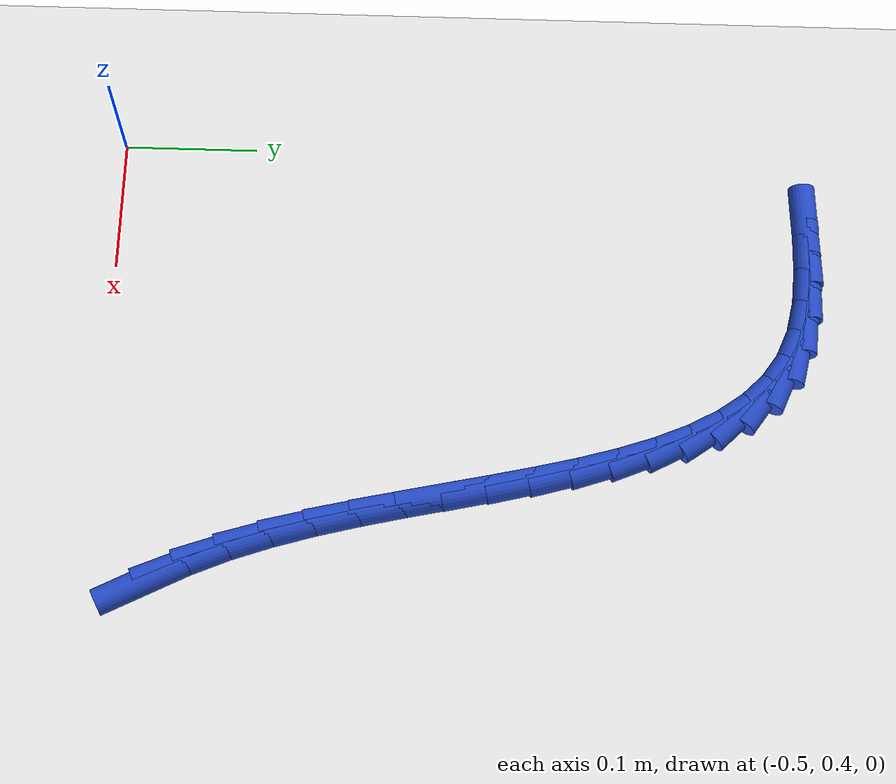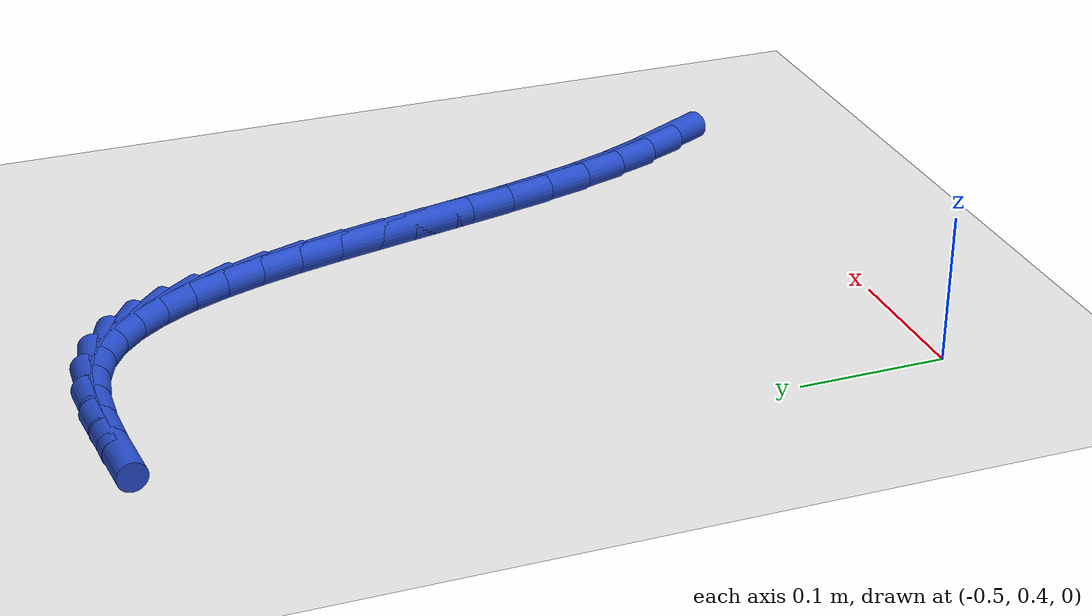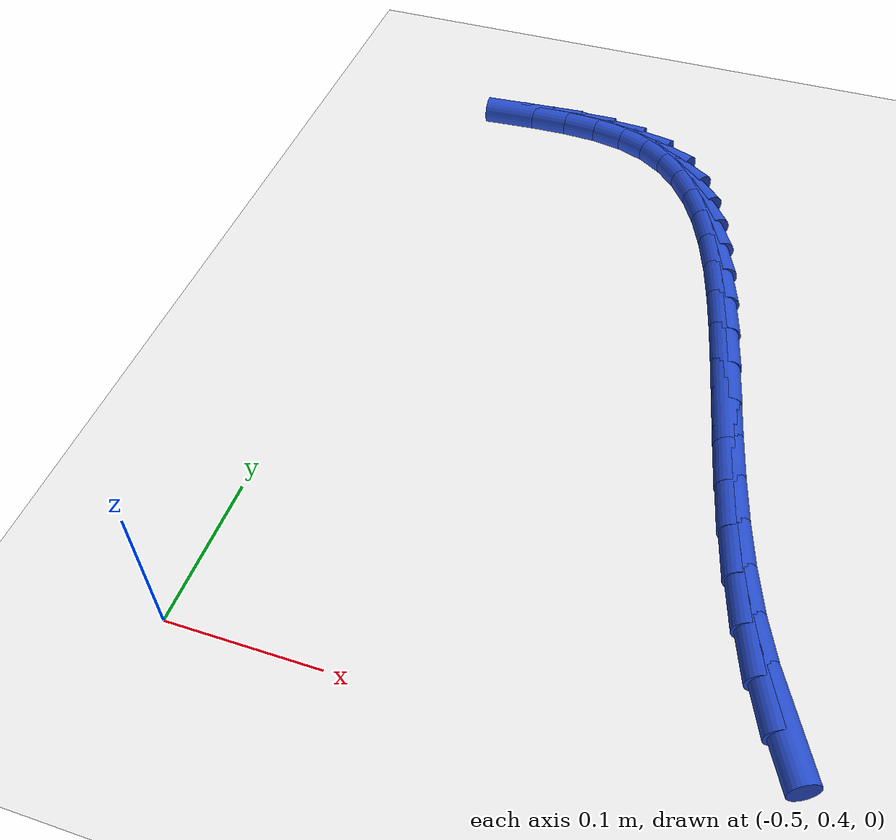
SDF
<sdf version="1.6">
 <world name="default">
  <model name="ground_plane">
   <static>1</static>
   <link name="link">
    <collision name="collision">
     <geometry><plane><normal>0 0 1</normal><size>100 100</size></plane></geometry>
     <surface><friction><ode><mu>100</mu><mu2>50</mu2></ode></friction></surface>
    </collision>
    <visual name="visual">
     <cast_shadows>0</cast_shadows>
     <geometry><plane><normal>0 0 1</normal><size>100 100</size></plane></geometry>
     <material>
      <script><uri>file://media/materials/scripts/gazebo.material</uri><name>Gazebo/WhiteGlow</name></script>
     </material>
    </visual>
   </link>
  </model>
  <model name="line">
   <link name="link_17">
    <pose>-0.15432065021140776 0.44470129612143205 0.01 0 1.57 -1.0973958093674703</pose>
    <collision name="collision">
     <geometry><cylinder><radius>0.01</radius><length>0.08</length></cylinder></geometry>
    </collision>
    <visual name="visual">
     <material>
      <script><name>Gazebo/Blue</name><uri>file://media/materials/scripts/gazebo.material</uri></script>
     </material>
     <geometry><cylinder><radius>0.01</radius><length>0.08</length></cylinder></geometry>
    </visual>
   </link>
   <link name="link_18">
    <pose>-0.16807427686131227 0.471550671698293 0.01 0 1.57 -1.1650815043284315</pose>
    <collision name="collision">
     <geometry><cylinder><radius>0.01</radius><length>0.08</length></cylinder></geometry>
    </collision>
    <visual name="visual">
     <material>
      <script><name>Gazebo/Blue</name><uri>file://media/materials/scripts/gazebo.material</uri></script>
     </material>
     <geometry><cylinder><radius>0.01</radius><length>0.08</length></cylinder></geometry>
    </visual>
   </link>
   <link name="link_19">
    <pose>-0.18028986768407876 0.499989049497895 0.01 0 1.57 -1.2301213299915739</pose>
    <collision name="collision">
     <geometry><cylinder><radius>0.01</radius><length>0.08</length></cylinder></geometry>
    </collision>
    <visual name="visual">
     <material>
      <script><name>Gazebo/Blue</name><uri>file://media/materials/scripts/gazebo.material</uri></script>
     </material>
     <geometry><cylinder><radius>0.01</radius><length>0.08</length></cylinder></geometry>
    </visual>
   </link>
   <link name="link_20">
    <pose>-0.19091954757558063 0.5299743366181011 0.01 0 1.57 -1.2802395257758827</pose>
    <collision name="collision">
     <geometry><cylinder><radius>0.01</radius><length>0.08</length></cylinder></geometry>
    </collision>
    <visual name="visual">
     <material>
      <script><name>Gazebo/Blue</name><uri>file://media/materials/scripts/gazebo.material</uri></script>
     </material>
     <geometry><cylinder><radius>0.01</radius><length>0.08</length></cylinder></geometry>
    </visual>
   </link>
   <link name="link_21">
    <pose>-0.20024060509884234 0.5611464328897653 0.01 0 1.57 -1.3167862494645184</pose>
    <collision name="collision">
     <geometry><cylinder><radius>0.01</radius><length>0.08</length></cylinder></geometry>
    </collision>
    <visual name="visual">
     <material>
      <script><name>Gazebo/Blue</name><uri>file://media/materials/scripts/gazebo.material</uri></script>
     </material>
     <geometry><cylinder><radius>0.01</radius><length>0.08</length></cylinder></geometry>
    </visual>
   </link>
   <link name="link_22">
    <pose>-0.20854447460294634 0.5931314036867638 0.01 0 1.57 -1.3411977398994734</pose>
    <collision name="collision">
     <geometry><cylinder><radius>0.01</radius><length>0.08</length></cylinder></geometry>
    </collision>
    <visual name="visual">
     <material>
      <script><name>Gazebo/Blue</name><uri>file://media/materials/scripts/gazebo.material</uri></script>
     </material>
     <geometry><cylinder><radius>0.01</radius><length>0.08</length></cylinder></geometry>
    </visual>
   </link>
   <link name="link_23">
    <pose>-0.21612259043697518 0.6255553143829725 0.01 0 1.57 -1.3543565602587473</pose>
    <collision name="collision">
     <geometry><cylinder><radius>0.01</radius><length>0.08</length></cylinder></geometry>
    </collision>
    <visual name="visual">
     <material>
      <script><name>Gazebo/Blue</name><uri>file://media/materials/scripts/gazebo.material</uri></script>
     </material>
     <geometry><cylinder><radius>0.01</radius><length>0.08</length></cylinder></geometry>
    </visual>
   </link>
   <link name="link_24">
    <pose>-0.2232663869500115 0.6580442303522681 0.01 0 1.57 -1.356579501501783</pose>
    <collision name="collision">
     <geometry><cylinder><radius>0.01</radius><length>0.08</length></cylinder></geometry>
    </collision>
    <visual name="visual">
     <material>
      <script><name>Gazebo/Blue</name><uri>file://media/materials/scripts/gazebo.material</uri></script>
     </material>
     <geometry><cylinder><radius>0.01</radius><length>0.08</length></cylinder></geometry>
    </visual>
   </link>
   <link name="link_25">
    <pose>-0.2302672984911376 0.6902242169685261 0.01 0 1.57 -1.3475907251236856</pose>
    <collision name="collision">
     <geometry><cylinder><radius>0.01</radius><length>0.08</length></cylinder></geometry>
    </collision>
    <visual name="visual">
     <material>
      <script><name>Gazebo/Blue</name><uri>file://media/materials/scripts/gazebo.material</uri></script>
     </material>
     <geometry><cylinder><radius>0.01</radius><length>0.08</length></cylinder></geometry>
    </visual>
   </link>
   <link name="link_26">
    <pose>-0.23741675940943613 0.721721339605623 0.01 0 1.57 -1.3264558157334978</pose>
    <collision name="collision">
     <geometry><cylinder><radius>0.01</radius><length>0.08</length></cylinder></geometry>
    </collision>
    <visual name="visual">
     <material>
      <script><name>Gazebo/Blue</name><uri>file://media/materials/scripts/gazebo.material</uri></script>
     </material>
     <geometry><cylinder><radius>0.01</radius><length>0.08</length></cylinder></geometry>
    </visual>
   </link>
   <link name="link_27">
    <pose>-0.24500620405398954 0.7521616636374349 0.01 0 1.57 -1.2914641315655584</pose>
    <collision name="collision">
     <geometry><cylinder><radius>0.01</radius><length>0.08</length></cylinder></geometry>
    </collision>
    <visual name="visual">
     <material>
      <script><name>Gazebo/Blue</name><uri>file://media/materials/scripts/gazebo.material</uri></script>
     </material>
     <geometry><cylinder><radius>0.01</radius><length>0.08</length></cylinder></geometry>
    </visual>
   </link>
   <link name="link_28">
    <pose>-0.25332706677388034 0.7811712544378376 0.01 0 1.57 -1.2399625101100733</pose>
    <collision name="collision">
     <geometry><cylinder><radius>0.01</radius><length>0.08</length></cylinder></geometry>
    </collision>
    <visual name="visual">
     <material>
      <script><name>Gazebo/Blue</name><uri>file://media/materials/scripts/gazebo.material</uri></script>
     </material>
     <geometry><cylinder><radius>0.01</radius><length>0.08</length></cylinder></geometry>
    </visual>
   </link>
   <link name="link_29">
    <pose>-0.262670781918191 0.8083761773807077 0.01 0 1.57 -1.168187563916338</pose>
    <collision name="collision">
     <geometry><cylinder><radius>0.01</radius><length>0.08</length></cylinder></geometry>
    </collision>
    <visual name="visual">
     <material>
      <script><name>Gazebo/Blue</name><uri>file://media/materials/scripts/gazebo.material</uri></script>
     </material>
     <geometry><cylinder><radius>0.01</radius><length>0.08</length></cylinder></geometry>
    </visual>
   </link>
   <link name="link_30">
    <pose>-0.2733287838360041 0.8334024978399209 0.01 0 1.57 -1.0712680139525315</pose>
    <collision name="collision">
     <geometry><cylinder><radius>0.01</radius><length>0.08</length></cylinder></geometry>
    </collision>
    <visual name="visual">
     <material>
      <script><name>Gazebo/Blue</name><uri>file://media/materials/scripts/gazebo.material</uri></script>
     </material>
     <geometry><cylinder><radius>0.01</radius><length>0.08</length></cylinder></geometry>
    </visual>
   </link>
   <link name="link_31">
    <pose>-0.28559250687640225 0.8558762811893538 0.01 0 1.57 -0.943854486773389</pose>
    <collision name="collision">
     <geometry><cylinder><radius>0.01</radius><length>0.08</length></cylinder></geometry>
    </collision>
    <visual name="visual">
     <material>
      <script><name>Gazebo/Blue</name><uri>file://media/materials/scripts/gazebo.material</uri></script>
     </material>
     <geometry><cylinder><radius>0.01</radius><length>0.08</length></cylinder></geometry>
    </visual>
   </link>
   <link name="link_32">
    <pose>-0.29975338538846774 0.8754235928028822 0.01 0 1.57 -0.782251716981026</pose>
    <collision name="collision">
     <geometry><cylinder><radius>0.01</radius><length>0.08</length></cylinder></geometry>
    </collision>
    <visual name="visual">
     <material>
      <script><name>Gazebo/Blue</name><uri>file://media/materials/scripts/gazebo.material</uri></script>
     </material>
     <geometry><cylinder><radius>0.01</radius><length>0.08</length></cylinder></geometry>
    </visual>
   </link>
   <link name="link_33">
    <pose>-0.3161028537212831 0.8916704980543821 0.01 0 1.57 -0.5887217653913093</pose>
    <collision name="collision">
     <geometry><cylinder><radius>0.01</radius><length>0.08</length></cylinder></geometry>
    </collision>
    <visual name="visual">
     <material>
      <script><name>Gazebo/Blue</name><uri>file://media/materials/scripts/gazebo.material</uri></script>
     </material>
     <geometry><cylinder><radius>0.01</radius><length>0.08</length></cylinder></geometry>
    </visual>
   </link>
   <link name="link_34">
    <pose>-0.3349323462239311 0.9042430623177302 0.01 0 1.57 -0.3766655392250517</pose>
    <collision name="collision">
     <geometry><cylinder><radius>0.01</radius><length>0.08</length></cylinder></geometry>
    </collision>
    <visual name="visual">
     <material>
      <script><name>Gazebo/Blue</name><uri>file://media/materials/scripts/gazebo.material</uri></script>
     </material>
     <geometry><cylinder><radius>0.01</radius><length>0.08</length></cylinder></geometry>
    </visual>
   </link>
   <link name="link_35">
    <pose>-0.35652312889490695 0.9127833275080758 0.01 0 1.57 -0.19021077041386</pose>
    <collision name="collision">
     <geometry><cylinder><radius>0.01</radius><length>0.08</length></cylinder></geometry>
    </collision>
    <visual name="visual">
     <material>
      <script><name>Gazebo/Blue</name><uri>file://media/materials/scripts/gazebo.material</uri></script>
     </material>
     <geometry><cylinder><radius>0.01</radius><length>0.08</length></cylinder></geometry>
    </visual>
   </link>
   <link name="link_36">
    <pose>-0.38082033230206713 0.9174614724822471 0.01 0 1.57 -0.06106410085704112</pose>
    <collision name="collision">
     <geometry><cylinder><radius>0.01</radius><length>0.08</length></cylinder></geometry>
    </collision>
    <visual name="visual">
     <material>
      <script><name>Gazebo/Blue</name><uri>file://media/materials/scripts/gazebo.material</uri></script>
     </material>
     <geometry><cylinder><radius>0.01</radius><length>0.08</length></cylinder></geometry>
    </visual>
   </link>
   <link name="link_37">
    <pose>-0.4073638741852602 0.9190843476413585 0.01 0 1.57 0.020756921790680685</pose>
    <collision name="collision">
     <geometry><cylinder><radius>0.01</radius><length>0.08</length></cylinder></geometry>
    </collision>
    <visual name="visual">
     <material>
      <script><name>Gazebo/Blue</name><uri>file://media/materials/scripts/gazebo.material</uri></script>
     </material>
     <geometry><cylinder><radius>0.01</radius><length>0.08</length></cylinder></geometry>
    </visual>
   </link>
   <link name="link_38">
    <pose>-0.4356695369977032 0.9184967248173106 0.01 0 1.57 0.0659324734508826</pose>
    <collision name="collision">
     <geometry><cylinder><radius>0.01</radius><length>0.08</length></cylinder></geometry>
    </collision>
    <visual name="visual">
     <material>
      <script><name>Gazebo/Blue</name><uri>file://media/materials/scripts/gazebo.material</uri></script>
     </material>
     <geometry><cylinder><radius>0.01</radius><length>0.08</length></cylinder></geometry>
    </visual>
   </link>
  </model>
 </world>
</sdf>
